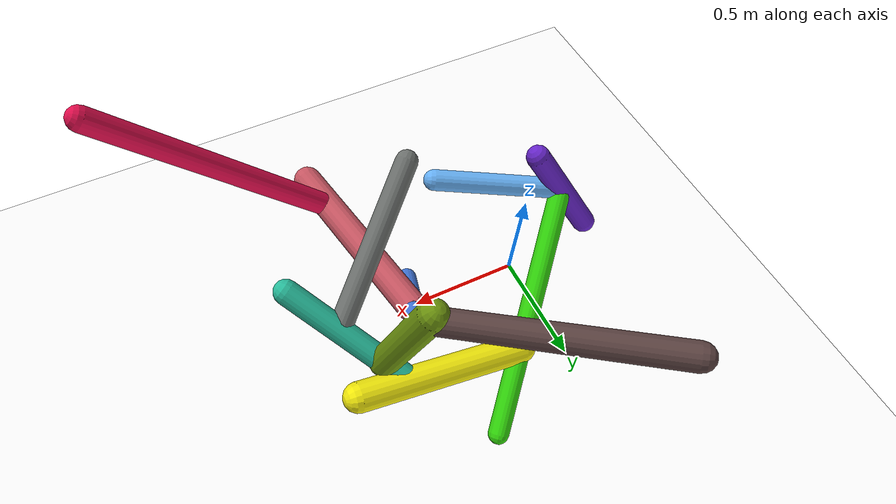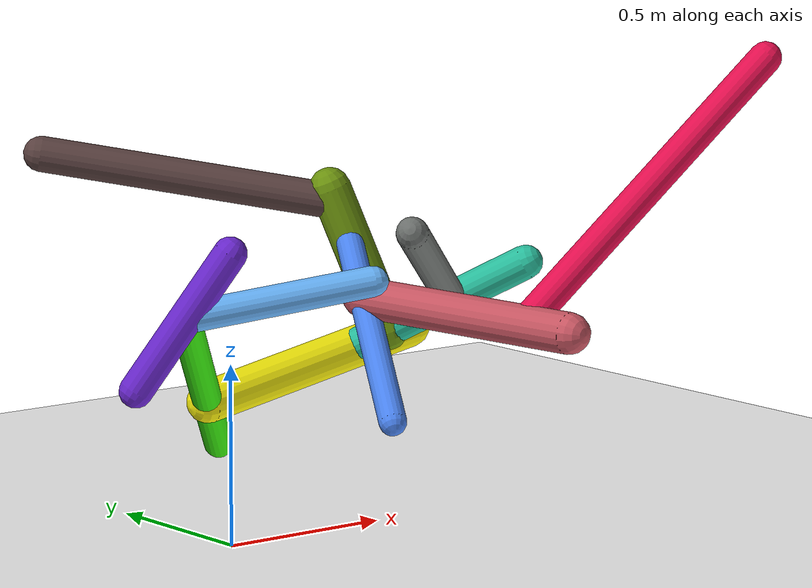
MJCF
<mujoco model="morphology">
  <option timestep="0.01"/>
  <default>
    <default class="/"/>
    <default class="0/"/>
    <default class="0/1/"/>
    <default class="0/2/"/>
    <default class="0/2/3/"/>
    <default class="0/2/3/4/"/>
    <default class="0/2/3/4/5/"/>
    <default class="0/2/3/4/6/"/>
    <default class="0/2/3/4/6/7/"/>
    <default class="0/2/3/4/6/8/"/>
    <default class="0/2/3/4/6/8/9/"/>
    <default class="0/2/3/4/6/8/9/10/"/>
  </default>
  <asset>
    <texture name="texplane" type="2d" builtin="checker" rgb1="0.10000000000000001 0.20000000000000001 0.29999999999999999" rgb2="0.20000000000000001 0.29999999999999999 0.40000000000000002" width="300" height="300"/>
    <material name="MatPlane" class="/" texture="texplane" texrepeat="20 20" specular="1" shininess="1" reflectance="0.5"/>
  </asset>
  <worldbody>
    <light name="//unnamed_light_0" class="/" directional="true" pos="0 0 1.5" dir="0 0 -1.3" cutoff="100" exponent="1" diffuse="1 1 1" specular="0.10000000000000001 0.10000000000000001 0.10000000000000001"/>
    <geom name="ground" class="/" type="plane" size="15 15 0.5" material="MatPlane" rgba="1 1 1 1"/>
    <site name="body" class="/" size="9.9999999999999995e-07 9.9999999999999995e-07 9.9999999999999995e-07" pos="0 0 0.80499497652053831"/>
    <body pos="0 0 0.80499497652053831" name="0/">
      <freejoint name="0/"/>
      <geom name="0/geom" class="0/" type="capsule" contype="1" conaffinity="1" condim="3" size="0.046970536554460499" rgba="0.4147580840344216 0.15223821456390696 0.80879473678549207 1" friction="0.59999999999999998 0.10000000000000001 0.10000000000000001" fromto="0 0 0 -0.2123904838018893 0.14413440816047873 -0.37237273206256527"/>
      <site name="0/end0" class="0/" size="0.0050000000000000001" pos="-0.2123904838018893 0.14413440816047873 -0.37237273206256527"/>
      <site name="0/attach1" class="0/" size="9.9999999999999995e-07 9.9999999999999995e-07 9.9999999999999995e-07" pos="-0.099069165408812984 0.067231239684312119 -0.17369260206991308"/>
      <body pos="-0.099069165408812984 0.067231239684312119 -0.17369260206991308" name="0/1/">
        <joint name="0/1/joint/" class="0/" type="hinge" axis="0 0 1" limited="true" range="-54.919071678828359 54.919071678828359"/>
        <geom name="0/1/geom" class="0/1/" type="capsule" contype="1" conaffinity="1" condim="3" size="0.043014688862051419" rgba="0.40924282419642433 0.70488797455562635 0.98047659066545467 1" friction="0.59999999999999998 0.10000000000000001 0.10000000000000001" fromto="0 0 0 0.47928014683717635 -0.20376738634098235 0.075900057461275372"/>
        <site name="0/1/end1" class="0/1/" size="0.0050000000000000001" pos="0.47928014683717635 -0.20376738634098235 0.075900057461275372"/>
      </body>
      <site name="0/attach2" class="0/" size="9.9999999999999995e-07 9.9999999999999995e-07 9.9999999999999995e-07" pos="-0.10104081164585561 0.068569256616102012 -0.17714938263185795"/>
      <body pos="-0.10104081164585561 0.068569256616102012 -0.17714938263185795" name="0/2/">
        <joint name="0/2/joint/" class="0/" type="hinge" axis="0 1 0" limited="true" range="-37.410989479494297 37.410989479494297"/>
        <geom name="0/2/geom" class="0/2/" type="capsule" contype="1" conaffinity="1" condim="3" size="0.042907984740700816" rgba="0.20411935780904411 0.86400356895582986 0.046031767565534398 1" friction="0.59999999999999998 0.10000000000000001 0.10000000000000001" fromto="0 0 0 0.5908582579009658 0.66225391173520332 -0.52784558304554907"/>
        <site name="0/2/end2" class="0/2/" size="0.0050000000000000001" pos="0.5908582579009658 0.66225391173520332 -0.52784558304554907"/>
        <site name="0/2/attach3" class="0/2/" size="9.9999999999999995e-07 9.9999999999999995e-07 9.9999999999999995e-07" pos="0.38517099858655146 0.43171267743143316 -0.34409404895756185"/>
        <body pos="0.38517099858655146 0.43171267743143316 -0.34409404895756185" name="0/2/3/">
          <joint name="0/2/3/joint/" class="0/2/" type="hinge" axis="-0.82012076814175261 0.44745013374034298 -0.35663749589510418" limited="true" range="-56.628564401025542 56.628564401025542"/>
          <geom name="0/2/3/geom" class="0/2/3/" type="capsule" contype="1" conaffinity="1" condim="3" size="0.06035139369537805" rgba="0.96153556080430813 0.92489357284213236 0.043720871743042844 1" friction="0.59999999999999998 0.10000000000000001 0.10000000000000001" fromto="0 0 0 0.70305653946042979 -0.031014480354584206 0.14176553184453411"/>
          <site name="0/2/3/end3" class="0/2/3/" size="0.0050000000000000001" pos="0.70305653946042979 -0.031014480354584206 0.14176553184453411"/>
          <site name="0/2/3/attach4" class="0/2/3/" size="9.9999999999999995e-07 9.9999999999999995e-07 9.9999999999999995e-07" pos="0.48414830275276571 -0.021357610919820004 0.097624497859090567"/>
          <body pos="0.48414830275276571 -0.021357610919820004 0.097624497859090567" name="0/2/3/4/">
            <joint name="0/2/3/4/joint/" class="0/2/3/" type="hinge" axis="0.20214936736153138 0.20930610515078468 -0.95672701834010154" limited="true" range="-59.554212525328637 59.554212525328637"/>
            <geom name="0/2/3/4/geom" class="0/2/3/4/" type="capsule" contype="1" conaffinity="1" condim="3" size="0.049330751592200933" rgba="0.15871188663569502 0.74812054147581564 0.61911815409525661 1" friction="0.59999999999999998 0.10000000000000001 0.10000000000000001" fromto="0 0 0 0.32602877473850733 -0.41014853917498417 0.27672857269140483"/>
            <site name="0/2/3/4/end4" class="0/2/3/4/" size="0.0050000000000000001" pos="0.32602877473850733 -0.41014853917498417 0.27672857269140483"/>
            <site name="0/2/3/4/attach5" class="0/2/3/4/" size="9.9999999999999995e-07 9.9999999999999995e-07 9.9999999999999995e-07" pos="0.19060585945289829 -0.23978470880522901 0.16178353421511418"/>
            <body pos="0.19060585945289829 -0.23978470880522901 0.16178353421511418" name="0/2/3/4/5/">
              <joint name="0/2/3/4/5/joint/" class="0/2/3/4/" type="hinge" axis="0.83501383886394476 0.45611927512581035 -0.30774517992066569" limited="true" range="-30.300208005062998 30.300208005062998"/>
              <geom name="0/2/3/4/5/geom" class="0/2/3/4/5/" type="capsule" contype="1" conaffinity="1" condim="3" size="0.045407209402752169" rgba="0.42877260549908036 0.44431574719852474 0.4337690369068633 1" friction="0.59999999999999998 0.10000000000000001 0.10000000000000001" fromto="0 0 0 -0.47270201505343035 -0.41400574231700227 0.29112739798213472"/>
              <site name="0/2/3/4/5/end5" class="0/2/3/4/5/" size="0.0050000000000000001" pos="-0.47270201505343035 -0.41400574231700227 0.29112739798213472"/>
            </body>
            <site name="0/2/3/4/attach6" class="0/2/3/4/" size="9.9999999999999995e-07 9.9999999999999995e-07 9.9999999999999995e-07" pos="0.074157492669641167 -0.093291113067329304 0.062943821806226971"/>
            <body pos="0.074157492669641167 -0.093291113067329304 0.062943821806226971" name="0/2/3/4/6/">
              <geom name="0/2/3/4/6/geom" class="0/2/3/4/6/" type="capsule" contype="1" conaffinity="1" condim="3" size="0.05961834336720391" rgba="0.43050495305904701 0.58360143930217312 0.058886691587055284 1" friction="0.59999999999999998 0.10000000000000001 0.10000000000000001" fromto="0 0 0 -0.13840812011463588 0.090019472633011799 0.41588661493963652"/>
              <site name="0/2/3/4/6/end6" class="0/2/3/4/6/" size="0.0050000000000000001" pos="-0.13840812011463588 0.090019472633011799 0.41588661493963652"/>
              <site name="0/2/3/4/6/attach7" class="0/2/3/4/6/" size="9.9999999999999995e-07 9.9999999999999995e-07 9.9999999999999995e-07" pos="-0.12509837339101834 0.081362925748720213 0.37589369034818493"/>
              <body pos="-0.12509837339101834 0.081362925748720213 0.37589369034818493" name="0/2/3/4/6/7/">
                <joint name="0/2/3/4/6/7/joint/" class="0/2/3/4/6/" type="hinge" axis="5.5511151231257827e-17 -0.97736654778653609 0.21155290418197639" limited="true" range="-45.613778745943314 45.613778745943314"/>
                <geom name="0/2/3/4/6/7/geom" class="0/2/3/4/6/7/" type="capsule" contype="1" conaffinity="1" condim="3" size="0.051636163954927594" rgba="0.35156334872785444 0.25545429732852531 0.25046828987203584 1" friction="0.59999999999999998 0.10000000000000001 0.10000000000000001" fromto="0 0 0 -0.65785251919959042 0.52404585624146938 0.13731304093732222"/>
                <site name="0/2/3/4/6/7/end7" class="0/2/3/4/6/7/" size="0.0050000000000000001" pos="-0.65785251919959042 0.52404585624146938 0.13731304093732222"/>
              </body>
              <site name="0/2/3/4/6/attach8" class="0/2/3/4/6/" size="9.9999999999999995e-07 9.9999999999999995e-07 9.9999999999999995e-07" pos="-0.098757253857731486 0.064230884023237178 0.29674429486946841"/>
              <body pos="-0.098757253857731486 0.064230884023237178 0.29674429486946841" name="0/2/3/4/6/8/">
                <joint name="0/2/3/4/6/8/joint/" class="0/2/3/4/6/" type="hinge" axis="5.5511151231257827e-17 -0.97736654778653609 0.21155290418197639" limited="true" range="-46.857094403795045 46.857094403795045"/>
                <geom name="0/2/3/4/6/8/geom" class="0/2/3/4/6/8/" type="capsule" contype="1" conaffinity="1" condim="3" size="0.0397303386769998" rgba="0.29227766831672908 0.52039424667902823 0.94545175583726426 1" friction="0.59999999999999998 0.10000000000000001 0.10000000000000001" fromto="0 0 0 -0.19065742215087489 -0.45455735801358116 -0.46773076276849951"/>
                <site name="0/2/3/4/6/8/end8" class="0/2/3/4/6/8/" size="0.0050000000000000001" pos="-0.19065742215087489 -0.45455735801358116 -0.46773076276849951"/>
                <site name="0/2/3/4/6/8/attach9" class="0/2/3/4/6/8/" size="9.9999999999999995e-07 9.9999999999999995e-07 9.9999999999999995e-07" pos="-0.068918624844450188 -0.16431286898671979 -0.16907477612878669"/>
                <body pos="-0.068918624844450188 -0.16431286898671979 -0.16907477612878669" name="0/2/3/4/6/8/9/">
                  <joint name="0/2/3/4/6/8/9/joint/" class="0/2/3/4/6/8/" type="hinge" axis="5.5511151231257827e-17 -0.71713351666141767 0.69693580714498249" limited="true" range="-44.463045912737329 44.463045912737329"/>
                  <geom name="0/2/3/4/6/8/9/geom" class="0/2/3/4/6/8/9/" type="capsule" contype="1" conaffinity="1" condim="3" size="0.058338621067062266" rgba="0.79134693745405216 0.34059503656591528 0.39042760139757537 1" friction="0.59999999999999998 0.10000000000000001 0.10000000000000001" fromto="0 0 0 0.1319102574233304 -0.74700723476675568 -0.010862414268696385"/>
                  <site name="0/2/3/4/6/8/9/end9" class="0/2/3/4/6/8/9/" size="0.0050000000000000001" pos="0.1319102574233304 -0.74700723476675568 -0.010862414268696385"/>
                  <site name="0/2/3/4/6/8/9/attach10" class="0/2/3/4/6/8/9/" size="9.9999999999999995e-07 9.9999999999999995e-07 9.9999999999999995e-07" pos="0.10338058568577158 -0.58544382332497236 -0.0085130813250971701"/>
                  <body pos="0.10338058568577158 -0.58544382332497236 -0.0085130813250971701" name="0/2/3/4/6/8/9/10/">
                    <geom name="0/2/3/4/6/8/9/10/geom" class="0/2/3/4/6/8/9/10/" type="capsule" contype="1" conaffinity="1" condim="3" size="0.045995708205743703" rgba="0.89912409217924671 0.055435481871117243 0.30888534876763818 1" friction="0.59999999999999998 0.10000000000000001 0.10000000000000001" fromto="0 0 0 0.74896822213939007 -0.15503700316497937 0.69858497326581181"/>
                    <site name="0/2/3/4/6/8/9/10/end10" class="0/2/3/4/6/8/9/10/" size="0.0050000000000000001" pos="0.74896822213939007 -0.15503700316497937 0.69858497326581181"/>
                  </body>
                </body>
              </body>
            </body>
          </body>
        </body>
      </body>
      <camera name="0/iso" class="0/" mode="trackcom" pos="-2.2999999999999998 -2.2999999999999998 1" xyaxes="0.45000000000000001 -0.45000000000000001 0 0.29999999999999999 0.14999999999999999 0.93999999999999995"/>
    </body>
  </worldbody>
  <actuator>
    <motor name="0/1/motor" class="0/1/" ctrllimited="true" ctrlrange="-1 1" gear="63" joint="0/1/joint/"/>
    <motor name="0/2/motor" class="0/2/" ctrllimited="true" ctrlrange="-1 1" gear="88" joint="0/2/joint/"/>
    <motor name="0/2/3/motor" class="0/2/3/" ctrllimited="true" ctrlrange="-1 1" gear="88" joint="0/2/3/joint/"/>
    <motor name="0/2/3/4/motor" class="0/2/3/4/" ctrllimited="true" ctrlrange="-1 1" gear="53" joint="0/2/3/4/joint/"/>
    <motor name="0/2/3/4/5/motor" class="0/2/3/4/5/" ctrllimited="true" ctrlrange="-1 1" gear="66" joint="0/2/3/4/5/joint/"/>
    <motor name="0/2/3/4/6/7/motor" class="0/2/3/4/6/7/" ctrllimited="true" ctrlrange="-1 1" gear="91" joint="0/2/3/4/6/7/joint/"/>
    <motor name="0/2/3/4/6/8/motor" class="0/2/3/4/6/8/" ctrllimited="true" ctrlrange="-1 1" gear="95" joint="0/2/3/4/6/8/joint/"/>
    <motor name="0/2/3/4/6/8/9/motor" class="0/2/3/4/6/8/9/" ctrllimited="true" ctrlrange="-1 1" gear="96" joint="0/2/3/4/6/8/9/joint/"/>
  </actuator>
  <sensor>
    <subtreelinvel name="velocity" body="0/"/>
  </sensor>
</mujoco>
